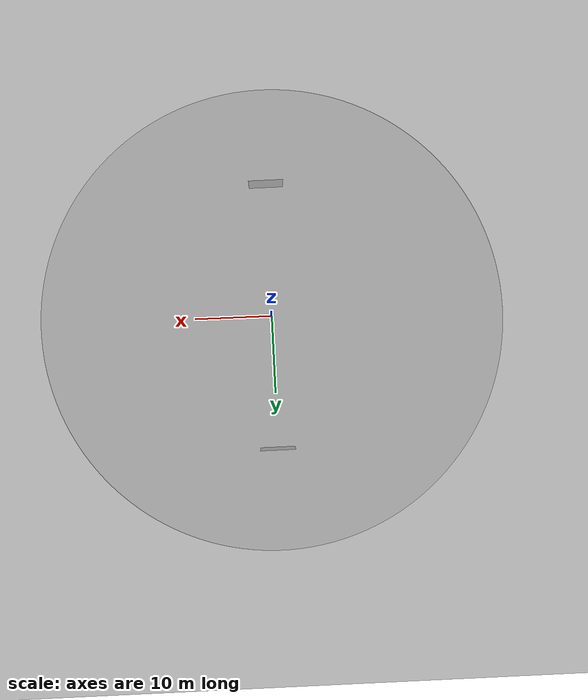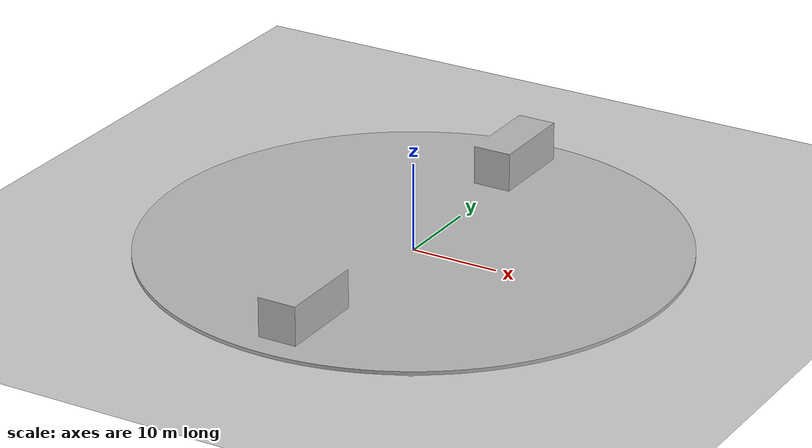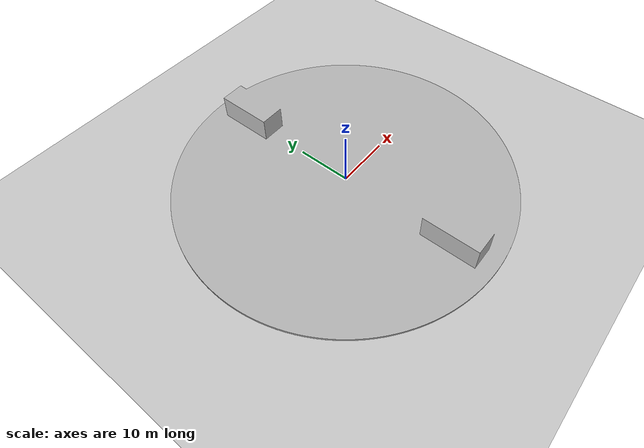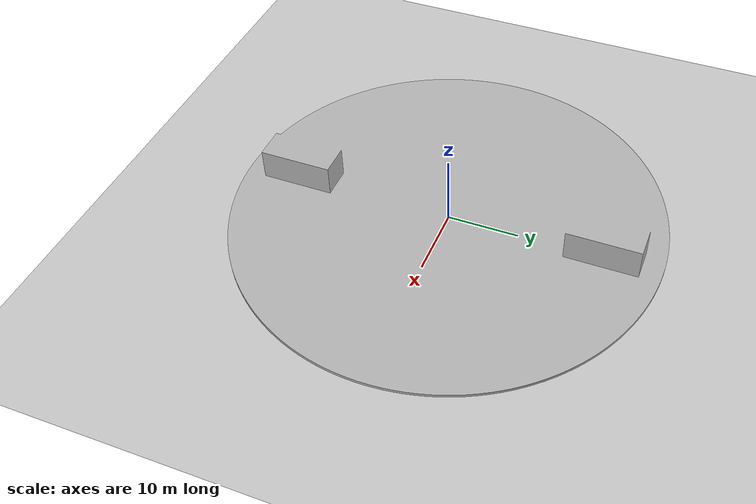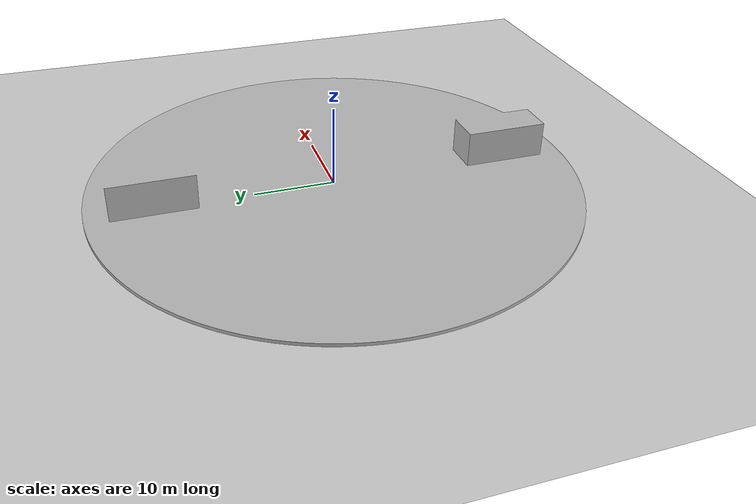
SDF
<?xml version="1.0"?>

<sdf version="1.4">
  <world name="default">
    <include>
      <uri>model://ground_plane</uri>
    </include>
    <include>
      <uri>model://sun</uri>
    </include>
    <model name="my_mesh">
      <pose>0 0 0  0 0 0</pose>
      <static>true</static>
      <link name="body">
        <visual name="visual">
          <geometry>
            <mesh><uri>package://microrobot/meshes/colision_mesh/platform_collision_mesh_v3.stl</uri></mesh>
          </geometry>
        </visual>
      </link>
    </model>
  </world>
</sdf>
